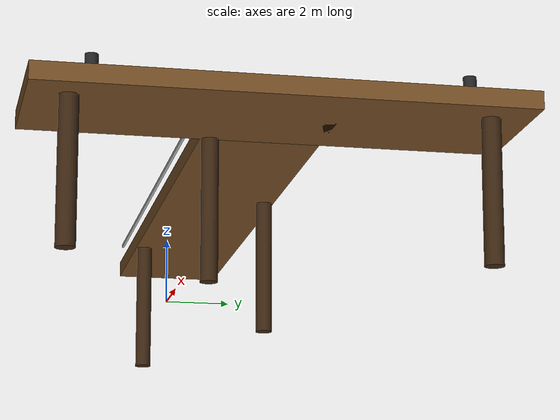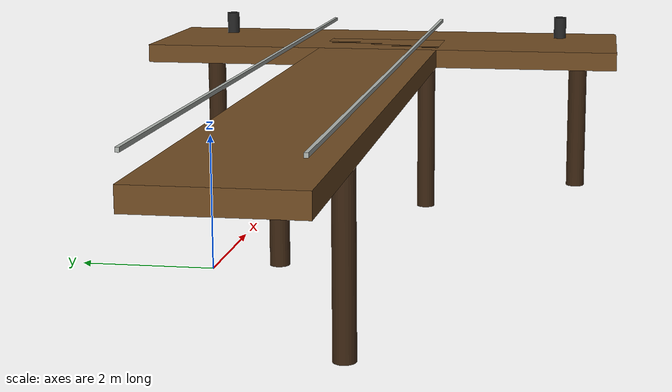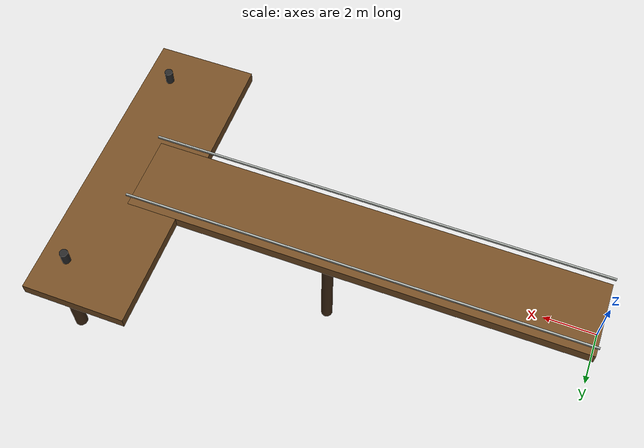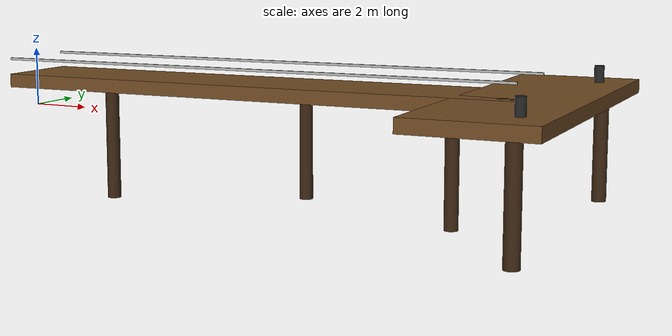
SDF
<?xml version="1.0"?>
<sdf version="1.10"><model name="marina_pier"><static>true</static><link name="pier">
  <collision name="walkway_collision"><pose>9 0 1 0 0 0</pose><geometry><box><size>18 3 0.45</size></box></geometry></collision>
  <collision name="head_collision"><pose>18 0 1 0 0 0</pose><geometry><box><size>4 12 0.45</size></box></geometry></collision>
  <visual name="walkway"><pose>9 0 1 0 0 0</pose><geometry><box><size>18 3 0.45</size></box></geometry><material><ambient>0.23 0.15 0.075 1</ambient><diffuse>0.45 0.3 0.14 1</diffuse><specular>0.05 0.04 0.03 1</specular></material></visual>
  <visual name="head"><pose>18 0 1 0 0 0</pose><geometry><box><size>4 12 0.45</size></box></geometry><material><ambient>0.23 0.15 0.075 1</ambient><diffuse>0.45 0.3 0.14 1</diffuse></material></visual>
  <visual name="pile_a"><pose>4 -1.25 -0.8 0 0 0</pose><geometry><cylinder><radius>0.22</radius><length>4</length></cylinder></geometry><material><ambient>0.12 0.08 0.04 1</ambient><diffuse>0.24 0.15 0.07 1</diffuse></material></visual>
  <visual name="pile_b"><pose>10 1.25 -0.8 0 0 0</pose><geometry><cylinder><radius>0.22</radius><length>4</length></cylinder></geometry><material><ambient>0.12 0.08 0.04 1</ambient><diffuse>0.24 0.15 0.07 1</diffuse></material></visual>
  <visual name="pile_c"><pose>16 -1.25 -0.8 0 0 0</pose><geometry><cylinder><radius>0.22</radius><length>4</length></cylinder></geometry><material><ambient>0.12 0.08 0.04 1</ambient><diffuse>0.24 0.15 0.07 1</diffuse></material></visual>
  <visual name="pile_d"><pose>19 5 -0.8 0 0 0</pose><geometry><cylinder><radius>0.24</radius><length>4</length></cylinder></geometry><material><ambient>0.12 0.08 0.04 1</ambient><diffuse>0.24 0.15 0.07 1</diffuse></material></visual>
  <visual name="pile_e"><pose>19 -5 -0.8 0 0 0</pose><geometry><cylinder><radius>0.24</radius><length>4</length></cylinder></geometry><material><ambient>0.12 0.08 0.04 1</ambient><diffuse>0.24 0.15 0.07 1</diffuse></material></visual>
  <visual name="rail_left"><pose>9 1.42 1.75 0 0 0</pose><geometry><box><size>18 0.07 0.08</size></box></geometry><material><ambient>0.45 0.46 0.45 1</ambient><diffuse>0.7 0.72 0.7 1</diffuse><specular>0.4 0.4 0.4 1</specular></material></visual>
  <visual name="rail_right"><pose>9 -1.42 1.75 0 0 0</pose><geometry><box><size>18 0.07 0.08</size></box></geometry><material><ambient>0.45 0.46 0.45 1</ambient><diffuse>0.7 0.72 0.7 1</diffuse></material></visual>
  <visual name="bollard_n"><pose>19 4.5 1.5 0 0 0</pose><geometry><cylinder><radius>0.16</radius><length>0.55</length></cylinder></geometry><material><ambient>0.08 0.08 0.08 1</ambient><diffuse>0.15 0.15 0.15 1</diffuse></material></visual>
  <visual name="bollard_s"><pose>19 -4.5 1.5 0 0 0</pose><geometry><cylinder><radius>0.16</radius><length>0.55</length></cylinder></geometry><material><ambient>0.08 0.08 0.08 1</ambient><diffuse>0.15 0.15 0.15 1</diffuse></material></visual>
  <light name="pier_light_n" type="point"><pose>19 5 2.2 0 0 0</pose><cast_shadows>false</cast_shadows><intensity>1</intensity><diffuse>1 0.75 0.2 1</diffuse><attenuation><range>22</range><constant>0.8</constant><linear>0.05</linear><quadratic>0.003</quadratic></attenuation></light>
  <light name="pier_light_s" type="point"><pose>19 -5 2.2 0 0 0</pose><cast_shadows>false</cast_shadows><intensity>1</intensity><diffuse>1 0.75 0.2 1</diffuse><attenuation><range>22</range><constant>0.8</constant><linear>0.05</linear><quadratic>0.003</quadratic></attenuation></light>
  </link></model></sdf>
